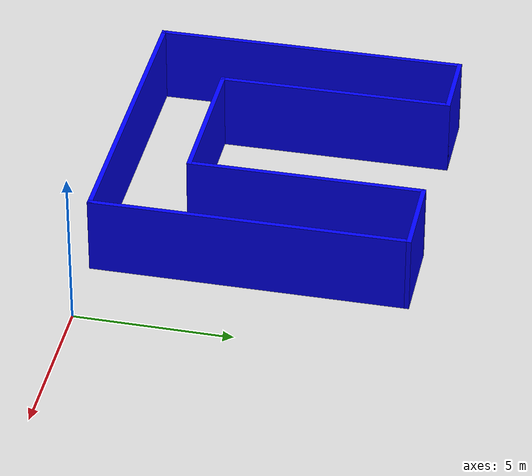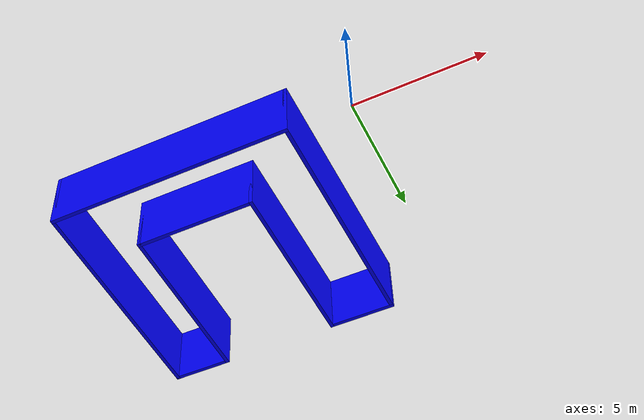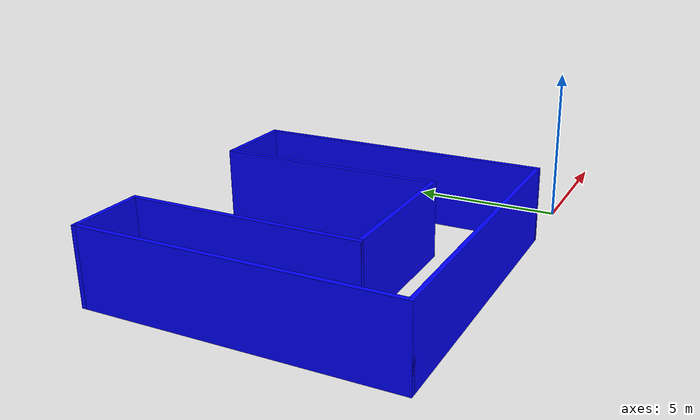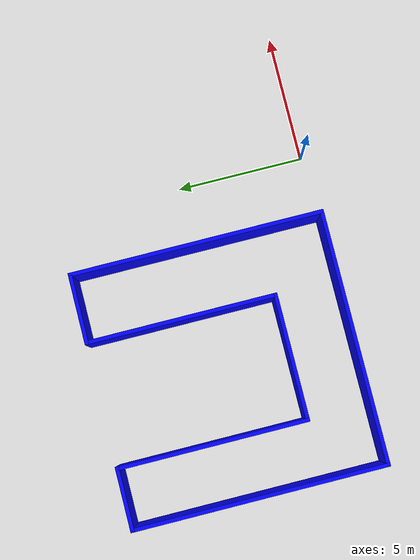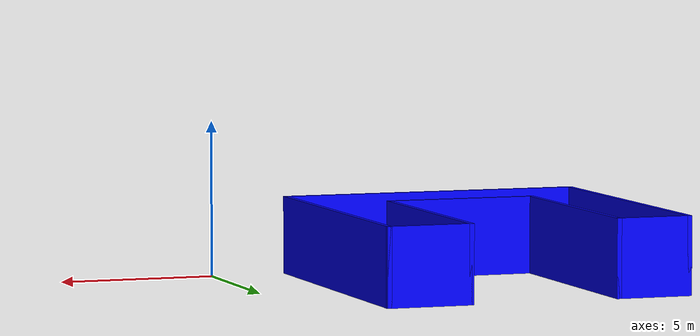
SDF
<?xml version='1.0'?>
<sdf version='1.6'>
  <model name='Walls'>
    <pose frame=''>-7.46646 4.89055 0 0 -0 0</pose>
    <link name='Wall_13'>
      <collision name='Wall_13_Collision'>
        <geometry>
          <box>
            <size>10 0.15 2.5</size>
          </box>
        </geometry>
        <pose frame=''>0 0 1.25 0 -0 0</pose>
      </collision>
      <visual name='Wall_13_Visual'>
        <pose frame=''>0 0 1.25 0 -0 0</pose>
        <geometry>
          <box>
            <size>10 0.15 2.5</size>
          </box>
        </geometry>
        <material>
          <script>
            <uri>file://media/materials/scripts/gazebo.material</uri>
            <name>Gazebo/Grey</name>
          </script>
          <ambient>0 0 1 1</ambient>
        </material>
      </visual>
      <pose frame=''>4.925 0 0 0 -0 1.5708</pose>
    </link>
    <link name='Wall_14'>
      <collision name='Wall_14_Collision'>
        <geometry>
          <box>
            <size>2.8 0.15 2.5</size>
          </box>
        </geometry>
        <pose frame=''>0 0 1.25 0 -0 0</pose>
      </collision>
      <visual name='Wall_14_Visual'>
        <pose frame=''>0 0 1.25 0 -0 0</pose>
        <geometry>
          <box>
            <size>2.8 0.15 2.5</size>
          </box>
        </geometry>
        <material>
          <script>
            <uri>file://media/materials/scripts/gazebo.material</uri>
            <name>Gazebo/Grey</name>
          </script>
          <ambient>0 0 1 1</ambient>
        </material>
      </visual>
      <pose frame=''>3.6 4.925 0 0 0 -3.14159</pose>
    </link>
    <link name='Wall_3'>
      <collision name='Wall_3_Collision'>
        <geometry>
          <box>
            <size>10 0.15 2.5</size>
          </box>
        </geometry>
        <pose frame=''>0 0 1.25 0 -0 0</pose>
      </collision>
      <visual name='Wall_3_Visual'>
        <pose frame=''>0 0 1.25 0 -0 0</pose>
        <geometry>
          <box>
            <size>10 0.15 2.5</size>
          </box>
        </geometry>
        <material>
          <script>
            <uri>file://media/materials/scripts/gazebo.material</uri>
            <name>Gazebo/Grey</name>
          </script>
          <ambient>0 0 1 1</ambient>
        </material>
      </visual>
      <pose frame=''>-4.925 0 0 0 0 -1.5708</pose>
    </link>
    <link name='Wall_4'>
      <collision name='Wall_4_Collision'>
        <geometry>
          <box>
            <size>10 0.15 2.5</size>
          </box>
        </geometry>
        <pose frame=''>0 0 1.25 0 -0 0</pose>
      </collision>
      <visual name='Wall_4_Visual'>
        <pose frame=''>0 0 1.25 0 -0 0</pose>
        <geometry>
          <box>
            <size>10 0.15 2.5</size>
          </box>
        </geometry>
        <material>
          <script>
            <uri>file://media/materials/scripts/gazebo.material</uri>
            <name>Gazebo/Grey</name>
          </script>
          <ambient>0 0 1 1</ambient>
        </material>
      </visual>
      <pose frame=''>0 -4.925 0 0 -0 0</pose>
    </link>
    <link name='Wall_6'>
      <collision name='Wall_6_Collision'>
        <geometry>
          <box>
            <size>2.5 0.15 2.5</size>
          </box>
        </geometry>
        <pose frame=''>0 0 1.25 0 -0 0</pose>
      </collision>
      <visual name='Wall_6_Visual'>
        <pose frame=''>0 0 1.25 0 -0 0</pose>
        <geometry>
          <box>
            <size>2.5 0.15 2.5</size>
          </box>
        </geometry>
        <material>
          <script>
            <uri>file://media/materials/scripts/gazebo.material</uri>
            <name>Gazebo/Grey</name>
          </script>
          <ambient>0 0 1 1</ambient>
        </material>
      </visual>
      <pose frame=''>-3.75 4.925 0 0 -0 0</pose>
    </link>
    <link name='Wall_7'>
      <collision name='Wall_7_Collision'>
        <geometry>
          <box>
            <size>7.5 0.15 2.5</size>
          </box>
        </geometry>
        <pose frame=''>0 0 1.25 0 -0 0</pose>
      </collision>
      <visual name='Wall_7_Visual'>
        <pose frame=''>0 0 1.25 0 -0 0</pose>
        <geometry>
          <box>
            <size>7.5 0.15 2.5</size>
          </box>
        </geometry>
        <material>
          <script>
            <uri>file://media/materials/scripts/gazebo.material</uri>
            <name>Gazebo/Grey</name>
          </script>
          <ambient>0 0 1 1</ambient>
        </material>
      </visual>
      <pose frame=''>-2.575 1.25 0 0 0 -1.5708</pose>
    </link>
    <link name='Wall_8'>
      <collision name='Wall_8_Collision'>
        <geometry>
          <box>
            <size>5 0.15 2.5</size>
          </box>
        </geometry>
        <pose frame=''>0 0 1.25 0 -0 0</pose>
      </collision>
      <visual name='Wall_8_Visual'>
        <pose frame=''>0 0 1.25 0 -0 0</pose>
        <geometry>
          <box>
            <size>5 0.15 2.5</size>
          </box>
        </geometry>
        <material>
          <script>
            <uri>file://media/materials/scripts/gazebo.material</uri>
            <name>Gazebo/Grey</name>
          </script>
          <ambient>0 0 1 1</ambient>
        </material>
      </visual>
      <pose frame=''>-0.15 -2.425 0 0 -0 0</pose>
    </link>
    <link name='Wall_9'>
      <collision name='Wall_9_Collision'>
        <geometry>
          <box>
            <size>7.5 0.15 2.5</size>
          </box>
        </geometry>
        <pose frame=''>0 0 1.25 0 -0 0</pose>
      </collision>
      <visual name='Wall_9_Visual'>
        <pose frame=''>0 0 1.25 0 -0 0</pose>
        <geometry>
          <box>
            <size>7.5 0.15 2.5</size>
          </box>
        </geometry>
        <material>
          <script>
            <uri>file://media/materials/scripts/gazebo.material</uri>
            <name>Gazebo/Grey</name>
          </script>
          <ambient>0 0 1 1</ambient>
        </material>
      </visual>
      <pose frame=''>2.275 1.25 0 0 -0 1.5708</pose>
    </link>
    <static>1</static>
  </model>
</sdf>
